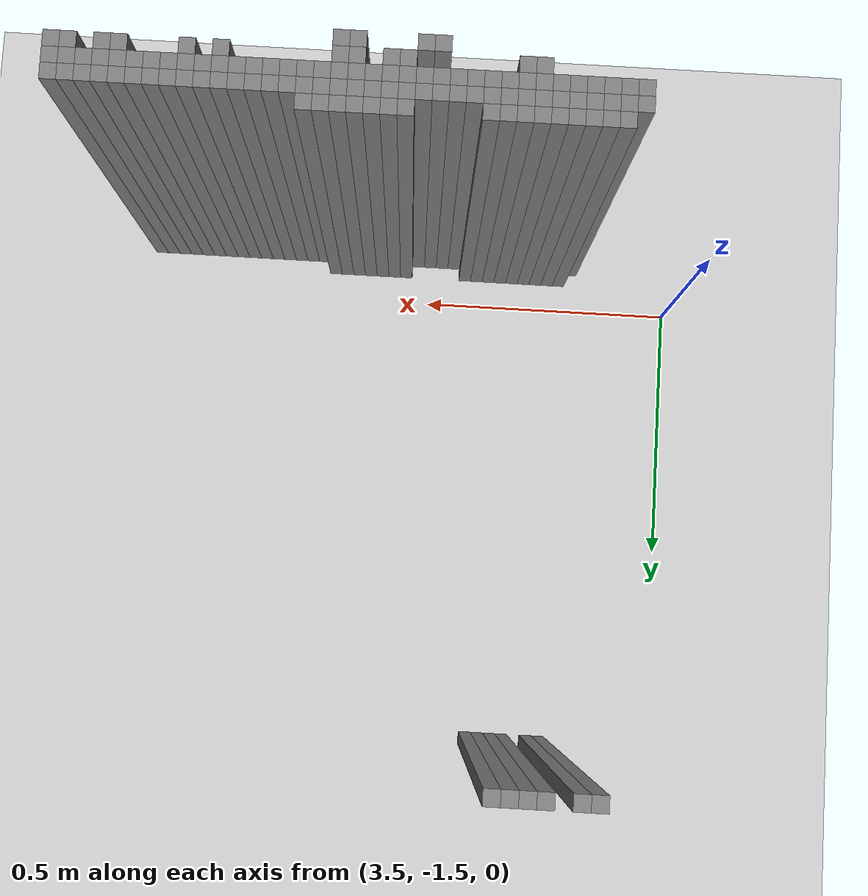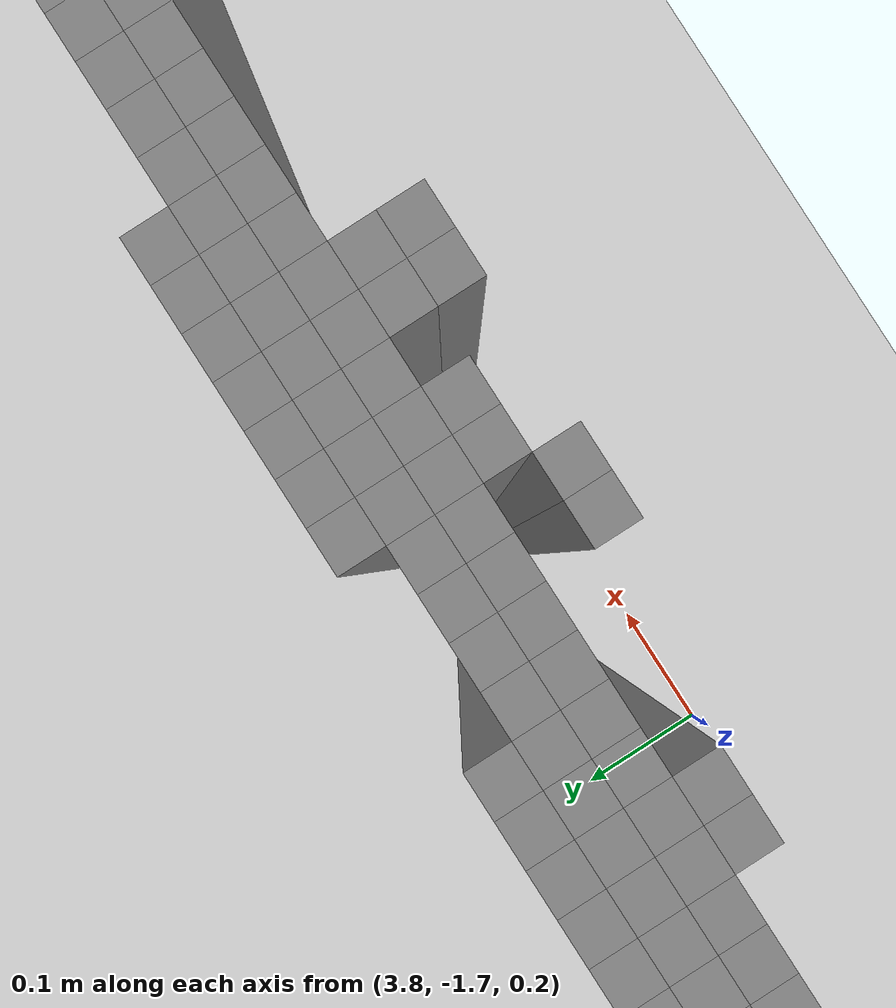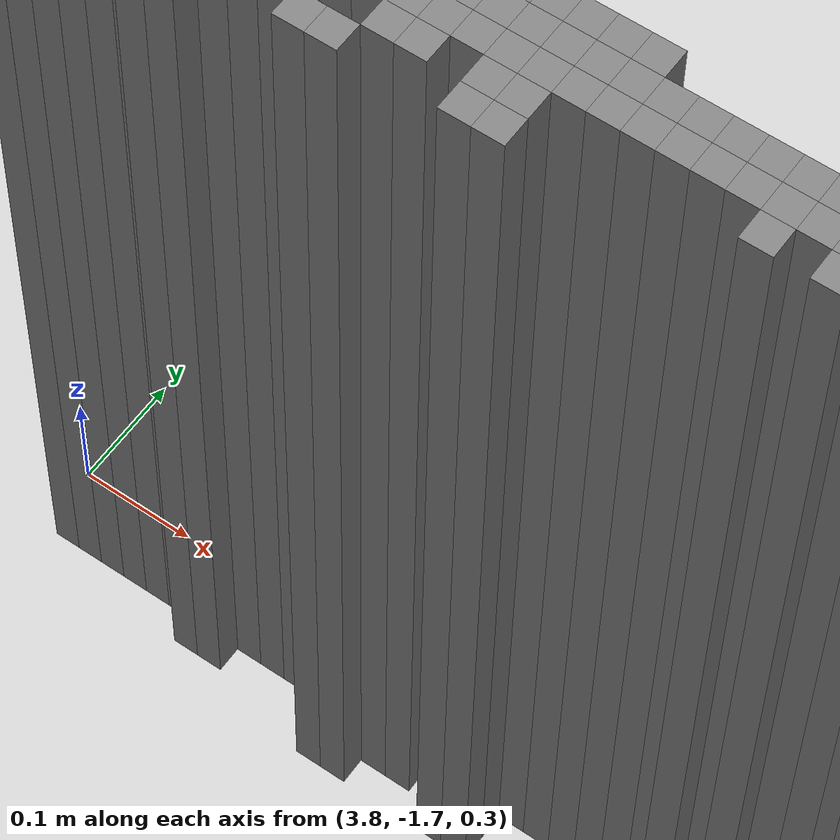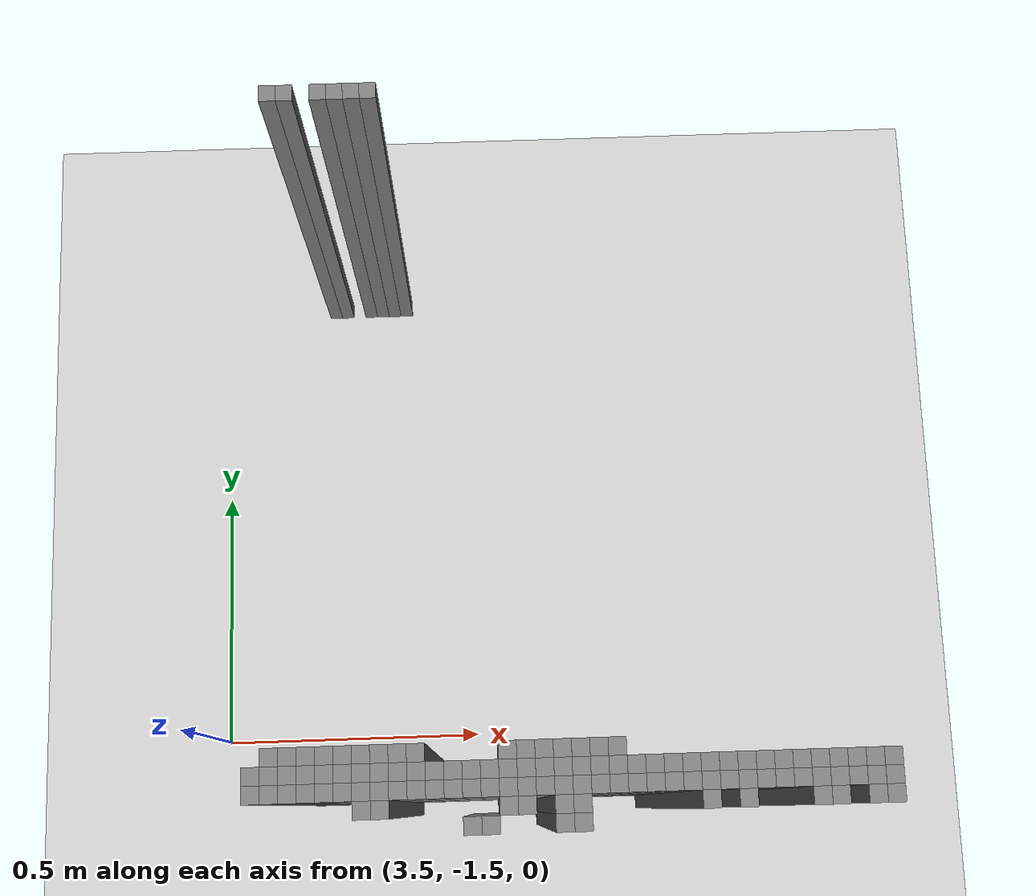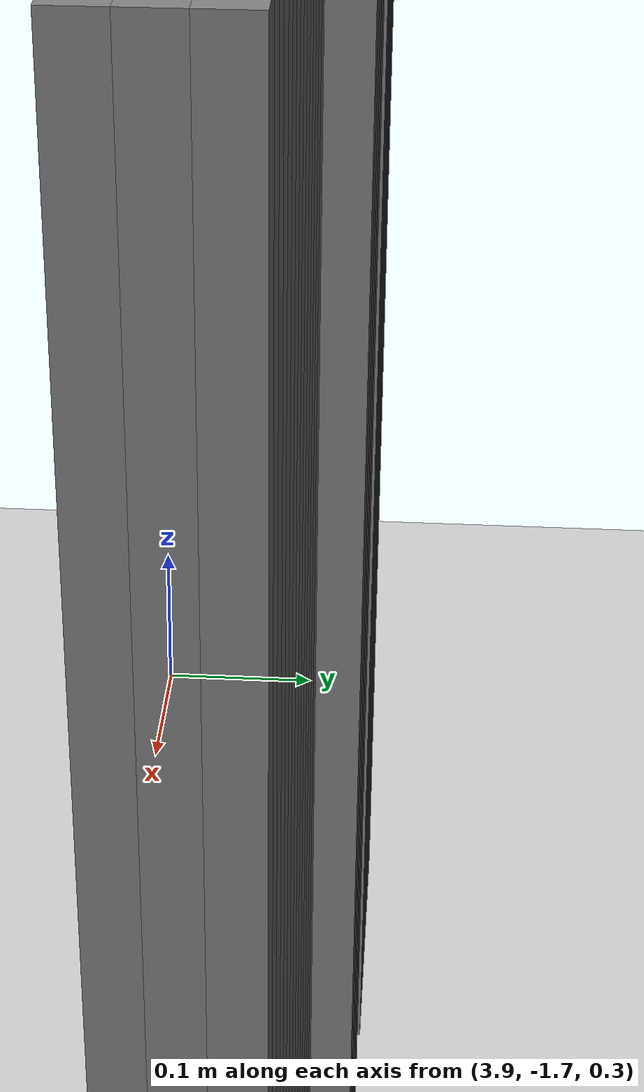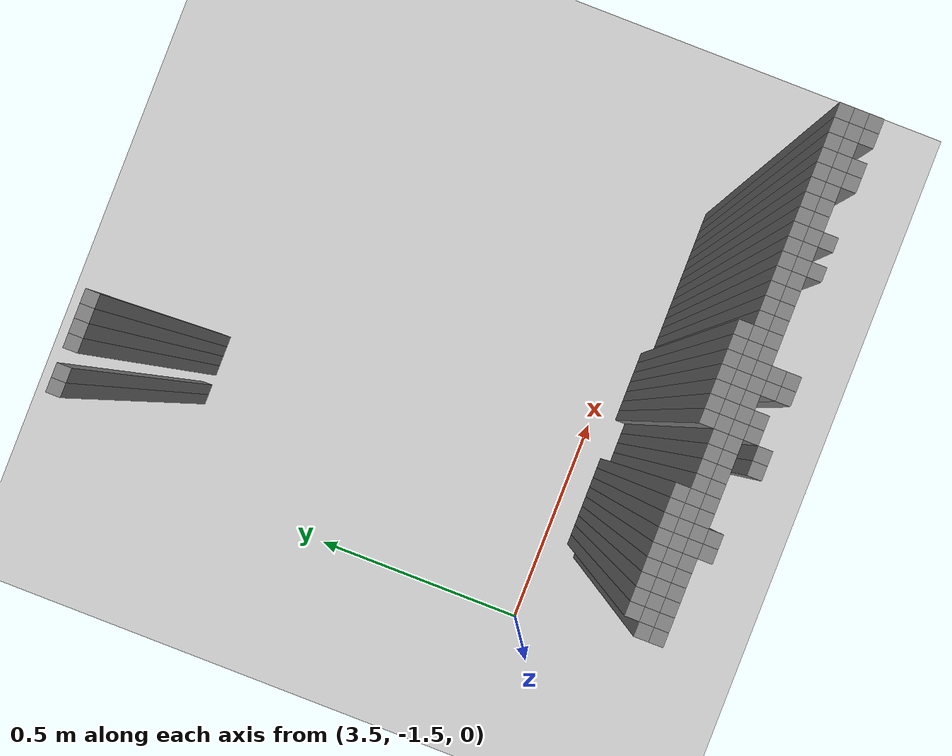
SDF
<sdf version="1.6">
 <world name="map_world">
  <include><uri>model://ground_plane</uri></include>
  <include><uri>model://sun</uri></include>
  <model name="obs_242_73">
   <static>true</static>
   <link name="link">
    <collision name="collision"><geometry><box><size>0.025 0.025 1.0</size></box></geometry></collision>
    <visual name="visual">
     <geometry><box><size>0.025 0.025 1.0</size></box></geometry>
     <material><ambient>0.5 0.5 0.5 1</ambient></material>
    </visual>
   </link>
   <pose>3.7237650000000007 -0.5940709999999998 0.5 0 0 0</pose>
  </model>
  <model name="obs_243_73">
   <static>true</static>
   <link name="link">
    <collision name="collision"><geometry><box><size>0.025 0.025 1.0</size></box></geometry></collision>
    <visual name="visual">
     <geometry><box><size>0.025 0.025 1.0</size></box></geometry>
     <material><ambient>0.5 0.5 0.5 1</ambient></material>
    </visual>
   </link>
   <pose>3.748765 -0.5940709999999998 0.5 0 0 0</pose>
  </model>
  <model name="obs_245_73">
   <static>true</static>
   <link name="link">
    <collision name="collision"><geometry><box><size>0.025 0.025 1.0</size></box></geometry></collision>
    <visual name="visual">
     <geometry><box><size>0.025 0.025 1.0</size></box></geometry>
     <material><ambient>0.5 0.5 0.5 1</ambient></material>
    </visual>
   </link>
   <pose>3.798765 -0.5940709999999998 0.5 0 0 0</pose>
  </model>
  <model name="obs_246_73">
   <static>true</static>
   <link name="link">
    <collision name="collision"><geometry><box><size>0.025 0.025 1.0</size></box></geometry></collision>
    <visual name="visual">
     <geometry><box><size>0.025 0.025 1.0</size></box></geometry>
     <material><ambient>0.5 0.5 0.5 1</ambient></material>
    </visual>
   </link>
   <pose>3.8237650000000003 -0.5940709999999998 0.5 0 0 0</pose>
  </model>
  <model name="obs_247_73">
   <static>true</static>
   <link name="link">
    <collision name="collision"><geometry><box><size>0.025 0.025 1.0</size></box></geometry></collision>
    <visual name="visual">
     <geometry><box><size>0.025 0.025 1.0</size></box></geometry>
     <material><ambient>0.5 0.5 0.5 1</ambient></material>
    </visual>
   </link>
   <pose>3.8487650000000007 -0.5940709999999998 0.5 0 0 0</pose>
  </model>
  <model name="obs_248_73">
   <static>true</static>
   <link name="link">
    <collision name="collision"><geometry><box><size>0.025 0.025 1.0</size></box></geometry></collision>
    <visual name="visual">
     <geometry><box><size>0.025 0.025 1.0</size></box></geometry>
     <material><ambient>0.5 0.5 0.5 1</ambient></material>
    </visual>
   </link>
   <pose>3.873765 -0.5940709999999998 0.5 0 0 0</pose>
  </model>
  <model name="obs_242_112">
   <static>true</static>
   <link name="link">
    <collision name="collision"><geometry><box><size>0.025 0.025 1.0</size></box></geometry></collision>
    <visual name="visual">
     <geometry><box><size>0.025 0.025 1.0</size></box></geometry>
     <material><ambient>0.5 0.5 0.5 1</ambient></material>
    </visual>
   </link>
   <pose>3.7237650000000007 -1.5690709999999999 0.5 0 0 0</pose>
  </model>
  <model name="obs_243_112">
   <static>true</static>
   <link name="link">
    <collision name="collision"><geometry><box><size>0.025 0.025 1.0</size></box></geometry></collision>
    <visual name="visual">
     <geometry><box><size>0.025 0.025 1.0</size></box></geometry>
     <material><ambient>0.5 0.5 0.5 1</ambient></material>
    </visual>
   </link>
   <pose>3.748765 -1.5690709999999999 0.5 0 0 0</pose>
  </model>
  <model name="obs_244_112">
   <static>true</static>
   <link name="link">
    <collision name="collision"><geometry><box><size>0.025 0.025 1.0</size></box></geometry></collision>
    <visual name="visual">
     <geometry><box><size>0.025 0.025 1.0</size></box></geometry>
     <material><ambient>0.5 0.5 0.5 1</ambient></material>
    </visual>
   </link>
   <pose>3.7737650000000005 -1.5690709999999999 0.5 0 0 0</pose>
  </model>
  <model name="obs_245_112">
   <static>true</static>
   <link name="link">
    <collision name="collision"><geometry><box><size>0.025 0.025 1.0</size></box></geometry></collision>
    <visual name="visual">
     <geometry><box><size>0.025 0.025 1.0</size></box></geometry>
     <material><ambient>0.5 0.5 0.5 1</ambient></material>
    </visual>
   </link>
   <pose>3.798765 -1.5690709999999999 0.5 0 0 0</pose>
  </model>
  <model name="obs_246_112">
   <static>true</static>
   <link name="link">
    <collision name="collision"><geometry><box><size>0.025 0.025 1.0</size></box></geometry></collision>
    <visual name="visual">
     <geometry><box><size>0.025 0.025 1.0</size></box></geometry>
     <material><ambient>0.5 0.5 0.5 1</ambient></material>
    </visual>
   </link>
   <pose>3.8237650000000003 -1.5690709999999999 0.5 0 0 0</pose>
  </model>
  <model name="obs_247_112">
   <static>true</static>
   <link name="link">
    <collision name="collision"><geometry><box><size>0.025 0.025 1.0</size></box></geometry></collision>
    <visual name="visual">
     <geometry><box><size>0.025 0.025 1.0</size></box></geometry>
     <material><ambient>0.5 0.5 0.5 1</ambient></material>
    </visual>
   </link>
   <pose>3.8487650000000007 -1.5690709999999999 0.5 0 0 0</pose>
  </model>
  <model name="obs_248_112">
   <static>true</static>
   <link name="link">
    <collision name="collision"><geometry><box><size>0.025 0.025 1.0</size></box></geometry></collision>
    <visual name="visual">
     <geometry><box><size>0.025 0.025 1.0</size></box></geometry>
     <material><ambient>0.5 0.5 0.5 1</ambient></material>
    </visual>
   </link>
   <pose>3.873765 -1.5690709999999999 0.5 0 0 0</pose>
  </model>
  <model name="obs_249_112">
   <static>true</static>
   <link name="link">
    <collision name="collision"><geometry><box><size>0.025 0.025 1.0</size></box></geometry></collision>
    <visual name="visual">
     <geometry><box><size>0.025 0.025 1.0</size></box></geometry>
     <material><ambient>0.5 0.5 0.5 1</ambient></material>
    </visual>
   </link>
   <pose>3.8987650000000005 -1.5690709999999999 0.5 0 0 0</pose>
  </model>
  <model name="obs_250_112">
   <static>true</static>
   <link name="link">
    <collision name="collision"><geometry><box><size>0.025 0.025 1.0</size></box></geometry></collision>
    <visual name="visual">
     <geometry><box><size>0.025 0.025 1.0</size></box></geometry>
     <material><ambient>0.5 0.5 0.5 1</ambient></material>
    </visual>
   </link>
   <pose>3.923765 -1.5690709999999999 0.5 0 0 0</pose>
  </model>
  <model name="obs_255_112">
   <static>true</static>
   <link name="link">
    <collision name="collision"><geometry><box><size>0.025 0.025 1.0</size></box></geometry></collision>
    <visual name="visual">
     <geometry><box><size>0.025 0.025 1.0</size></box></geometry>
     <material><ambient>0.5 0.5 0.5 1</ambient></material>
    </visual>
   </link>
   <pose>4.0487649999999995 -1.5690709999999999 0.5 0 0 0</pose>
  </model>
  <model name="obs_256_112">
   <static>true</static>
   <link name="link">
    <collision name="collision"><geometry><box><size>0.025 0.025 1.0</size></box></geometry></collision>
    <visual name="visual">
     <geometry><box><size>0.025 0.025 1.0</size></box></geometry>
     <material><ambient>0.5 0.5 0.5 1</ambient></material>
    </visual>
   </link>
   <pose>4.073765 -1.5690709999999999 0.5 0 0 0</pose>
  </model>
  <model name="obs_257_112">
   <static>true</static>
   <link name="link">
    <collision name="collision"><geometry><box><size>0.025 0.025 1.0</size></box></geometry></collision>
    <visual name="visual">
     <geometry><box><size>0.025 0.025 1.0</size></box></geometry>
     <material><ambient>0.5 0.5 0.5 1</ambient></material>
    </visual>
   </link>
   <pose>4.098765 -1.5690709999999999 0.5 0 0 0</pose>
  </model>
  <model name="obs_258_112">
   <static>true</static>
   <link name="link">
    <collision name="collision"><geometry><box><size>0.025 0.025 1.0</size></box></geometry></collision>
    <visual name="visual">
     <geometry><box><size>0.025 0.025 1.0</size></box></geometry>
     <material><ambient>0.5 0.5 0.5 1</ambient></material>
    </visual>
   </link>
   <pose>4.123765000000001 -1.5690709999999999 0.5 0 0 0</pose>
  </model>
  <model name="obs_259_112">
   <static>true</static>
   <link name="link">
    <collision name="collision"><geometry><box><size>0.025 0.025 1.0</size></box></geometry></collision>
    <visual name="visual">
     <geometry><box><size>0.025 0.025 1.0</size></box></geometry>
     <material><ambient>0.5 0.5 0.5 1</ambient></material>
    </visual>
   </link>
   <pose>4.148765000000001 -1.5690709999999999 0.5 0 0 0</pose>
  </model>
  <model name="obs_260_112">
   <static>true</static>
   <link name="link">
    <collision name="collision"><geometry><box><size>0.025 0.025 1.0</size></box></geometry></collision>
    <visual name="visual">
     <geometry><box><size>0.025 0.025 1.0</size></box></geometry>
     <material><ambient>0.5 0.5 0.5 1</ambient></material>
    </visual>
   </link>
   <pose>4.1737649999999995 -1.5690709999999999 0.5 0 0 0</pose>
  </model>
  <model name="obs_261_112">
   <static>true</static>
   <link name="link">
    <collision name="collision"><geometry><box><size>0.025 0.025 1.0</size></box></geometry></collision>
    <visual name="visual">
     <geometry><box><size>0.025 0.025 1.0</size></box></geometry>
     <material><ambient>0.5 0.5 0.5 1</ambient></material>
    </visual>
   </link>
   <pose>4.198765 -1.5690709999999999 0.5 0 0 0</pose>
  </model>
  <model name="obs_241_113">
   <static>true</static>
   <link name="link">
    <collision name="collision"><geometry><box><size>0.025 0.025 1.0</size></box></geometry></collision>
    <visual name="visual">
     <geometry><box><size>0.025 0.025 1.0</size></box></geometry>
     <material><ambient>0.5 0.5 0.5 1</ambient></material>
    </visual>
   </link>
   <pose>3.6987650000000003 -1.594071 0.5 0 0 0</pose>
  </model>
  <model name="obs_242_113">
   <static>true</static>
   <link name="link">
    <collision name="collision"><geometry><box><size>0.025 0.025 1.0</size></box></geometry></collision>
    <visual name="visual">
     <geometry><box><size>0.025 0.025 1.0</size></box></geometry>
     <material><ambient>0.5 0.5 0.5 1</ambient></material>
    </visual>
   </link>
   <pose>3.7237650000000007 -1.594071 0.5 0 0 0</pose>
  </model>
  <model name="obs_243_113">
   <static>true</static>
   <link name="link">
    <collision name="collision"><geometry><box><size>0.025 0.025 1.0</size></box></geometry></collision>
    <visual name="visual">
     <geometry><box><size>0.025 0.025 1.0</size></box></geometry>
     <material><ambient>0.5 0.5 0.5 1</ambient></material>
    </visual>
   </link>
   <pose>3.748765 -1.594071 0.5 0 0 0</pose>
  </model>
  <model name="obs_244_113">
   <static>true</static>
   <link name="link">
    <collision name="collision"><geometry><box><size>0.025 0.025 1.0</size></box></geometry></collision>
    <visual name="visual">
     <geometry><box><size>0.025 0.025 1.0</size></box></geometry>
     <material><ambient>0.5 0.5 0.5 1</ambient></material>
    </visual>
   </link>
   <pose>3.7737650000000005 -1.594071 0.5 0 0 0</pose>
  </model>
  <model name="obs_245_113">
   <static>true</static>
   <link name="link">
    <collision name="collision"><geometry><box><size>0.025 0.025 1.0</size></box></geometry></collision>
    <visual name="visual">
     <geometry><box><size>0.025 0.025 1.0</size></box></geometry>
     <material><ambient>0.5 0.5 0.5 1</ambient></material>
    </visual>
   </link>
   <pose>3.798765 -1.594071 0.5 0 0 0</pose>
  </model>
  <model name="obs_246_113">
   <static>true</static>
   <link name="link">
    <collision name="collision"><geometry><box><size>0.025 0.025 1.0</size></box></geometry></collision>
    <visual name="visual">
     <geometry><box><size>0.025 0.025 1.0</size></box></geometry>
     <material><ambient>0.5 0.5 0.5 1</ambient></material>
    </visual>
   </link>
   <pose>3.8237650000000003 -1.594071 0.5 0 0 0</pose>
  </model>
  <model name="obs_247_113">
   <static>true</static>
   <link name="link">
    <collision name="collision"><geometry><box><size>0.025 0.025 1.0</size></box></geometry></collision>
    <visual name="visual">
     <geometry><box><size>0.025 0.025 1.0</size></box></geometry>
     <material><ambient>0.5 0.5 0.5 1</ambient></material>
    </visual>
   </link>
   <pose>3.8487650000000007 -1.594071 0.5 0 0 0</pose>
  </model>
  <model name="obs_248_113">
   <static>true</static>
   <link name="link">
    <collision name="collision"><geometry><box><size>0.025 0.025 1.0</size></box></geometry></collision>
    <visual name="visual">
     <geometry><box><size>0.025 0.025 1.0</size></box></geometry>
     <material><ambient>0.5 0.5 0.5 1</ambient></material>
    </visual>
   </link>
   <pose>3.873765 -1.594071 0.5 0 0 0</pose>
  </model>
  <model name="obs_249_113">
   <static>true</static>
   <link name="link">
    <collision name="collision"><geometry><box><size>0.025 0.025 1.0</size></box></geometry></collision>
    <visual name="visual">
     <geometry><box><size>0.025 0.025 1.0</size></box></geometry>
     <material><ambient>0.5 0.5 0.5 1</ambient></material>
    </visual>
   </link>
   <pose>3.8987650000000005 -1.594071 0.5 0 0 0</pose>
  </model>
  <model name="obs_250_113">
   <static>true</static>
   <link name="link">
    <collision name="collision"><geometry><box><size>0.025 0.025 1.0</size></box></geometry></collision>
    <visual name="visual">
     <geometry><box><size>0.025 0.025 1.0</size></box></geometry>
     <material><ambient>0.5 0.5 0.5 1</ambient></material>
    </visual>
   </link>
   <pose>3.923765 -1.594071 0.5 0 0 0</pose>
  </model>
  <model name="obs_251_113">
   <static>true</static>
   <link name="link">
    <collision name="collision"><geometry><box><size>0.025 0.025 1.0</size></box></geometry></collision>
    <visual name="visual">
     <geometry><box><size>0.025 0.025 1.0</size></box></geometry>
     <material><ambient>0.5 0.5 0.5 1</ambient></material>
    </visual>
   </link>
   <pose>3.9487650000000003 -1.594071 0.5 0 0 0</pose>
  </model>
  <model name="obs_252_113">
   <static>true</static>
   <link name="link">
    <collision name="collision"><geometry><box><size>0.025 0.025 1.0</size></box></geometry></collision>
    <visual name="visual">
     <geometry><box><size>0.025 0.025 1.0</size></box></geometry>
     <material><ambient>0.5 0.5 0.5 1</ambient></material>
    </visual>
   </link>
   <pose>3.9737650000000007 -1.594071 0.5 0 0 0</pose>
  </model>
  <model name="obs_253_113">
   <static>true</static>
   <link name="link">
    <collision name="collision"><geometry><box><size>0.025 0.025 1.0</size></box></geometry></collision>
    <visual name="visual">
     <geometry><box><size>0.025 0.025 1.0</size></box></geometry>
     <material><ambient>0.5 0.5 0.5 1</ambient></material>
    </visual>
   </link>
   <pose>3.998765 -1.594071 0.5 0 0 0</pose>
  </model>
  <model name="obs_254_113">
   <static>true</static>
   <link name="link">
    <collision name="collision"><geometry><box><size>0.025 0.025 1.0</size></box></geometry></collision>
    <visual name="visual">
     <geometry><box><size>0.025 0.025 1.0</size></box></geometry>
     <material><ambient>0.5 0.5 0.5 1</ambient></material>
    </visual>
   </link>
   <pose>4.023765000000001 -1.594071 0.5 0 0 0</pose>
  </model>
  <model name="obs_255_113">
   <static>true</static>
   <link name="link">
    <collision name="collision"><geometry><box><size>0.025 0.025 1.0</size></box></geometry></collision>
    <visual name="visual">
     <geometry><box><size>0.025 0.025 1.0</size></box></geometry>
     <material><ambient>0.5 0.5 0.5 1</ambient></material>
    </visual>
   </link>
   <pose>4.0487649999999995 -1.594071 0.5 0 0 0</pose>
  </model>
  <model name="obs_256_113">
   <static>true</static>
   <link name="link">
    <collision name="collision"><geometry><box><size>0.025 0.025 1.0</size></box></geometry></collision>
    <visual name="visual">
     <geometry><box><size>0.025 0.025 1.0</size></box></geometry>
     <material><ambient>0.5 0.5 0.5 1</ambient></material>
    </visual>
   </link>
   <pose>4.073765 -1.594071 0.5 0 0 0</pose>
  </model>
  <model name="obs_257_113">
   <static>true</static>
   <link name="link">
    <collision name="collision"><geometry><box><size>0.025 0.025 1.0</size></box></geometry></collision>
    <visual name="visual">
     <geometry><box><size>0.025 0.025 1.0</size></box></geometry>
     <material><ambient>0.5 0.5 0.5 1</ambient></material>
    </visual>
   </link>
   <pose>4.098765 -1.594071 0.5 0 0 0</pose>
  </model>
  <model name="obs_258_113">
   <static>true</static>
   <link name="link">
    <collision name="collision"><geometry><box><size>0.025 0.025 1.0</size></box></geometry></collision>
    <visual name="visual">
     <geometry><box><size>0.025 0.025 1.0</size></box></geometry>
     <material><ambient>0.5 0.5 0.5 1</ambient></material>
    </visual>
   </link>
   <pose>4.123765000000001 -1.594071 0.5 0 0 0</pose>
  </model>
  <model name="obs_259_113">
   <static>true</static>
   <link name="link">
    <collision name="collision"><geometry><box><size>0.025 0.025 1.0</size></box></geometry></collision>
    <visual name="visual">
     <geometry><box><size>0.025 0.025 1.0</size></box></geometry>
     <material><ambient>0.5 0.5 0.5 1</ambient></material>
    </visual>
   </link>
   <pose>4.148765000000001 -1.594071 0.5 0 0 0</pose>
  </model>
  <model name="obs_260_113">
   <static>true</static>
   <link name="link">
    <collision name="collision"><geometry><box><size>0.025 0.025 1.0</size></box></geometry></collision>
    <visual name="visual">
     <geometry><box><size>0.025 0.025 1.0</size></box></geometry>
     <material><ambient>0.5 0.5 0.5 1</ambient></material>
    </visual>
   </link>
   <pose>4.1737649999999995 -1.594071 0.5 0 0 0</pose>
  </model>
  <model name="obs_261_113">
   <static>true</static>
   <link name="link">
    <collision name="collision"><geometry><box><size>0.025 0.025 1.0</size></box></geometry></collision>
    <visual name="visual">
     <geometry><box><size>0.025 0.025 1.0</size></box></geometry>
     <material><ambient>0.5 0.5 0.5 1</ambient></material>
    </visual>
   </link>
   <pose>4.198765 -1.594071 0.5 0 0 0</pose>
  </model>
  <model name="obs_262_113">
   <static>true</static>
   <link name="link">
    <collision name="collision"><geometry><box><size>0.025 0.025 1.0</size></box></geometry></collision>
    <visual name="visual">
     <geometry><box><size>0.025 0.025 1.0</size></box></geometry>
     <material><ambient>0.5 0.5 0.5 1</ambient></material>
    </visual>
   </link>
   <pose>4.223765 -1.594071 0.5 0 0 0</pose>
  </model>
  <model name="obs_263_113">
   <static>true</static>
   <link name="link">
    <collision name="collision"><geometry><box><size>0.025 0.025 1.0</size></box></geometry></collision>
    <visual name="visual">
     <geometry><box><size>0.025 0.025 1.0</size></box></geometry>
     <material><ambient>0.5 0.5 0.5 1</ambient></material>
    </visual>
   </link>
   <pose>4.248765000000001 -1.594071 0.5 0 0 0</pose>
  </model>
  <model name="obs_264_113">
   <static>true</static>
   <link name="link">
    <collision name="collision"><geometry><box><size>0.025 0.025 1.0</size></box></geometry></collision>
    <visual name="visual">
     <geometry><box><size>0.025 0.025 1.0</size></box></geometry>
     <material><ambient>0.5 0.5 0.5 1</ambient></material>
    </visual>
   </link>
   <pose>4.273765000000001 -1.594071 0.5 0 0 0</pose>
  </model>
  <model name="obs_265_113">
   <static>true</static>
   <link name="link">
    <collision name="collision"><geometry><box><size>0.025 0.025 1.0</size></box></geometry></collision>
    <visual name="visual">
     <geometry><box><size>0.025 0.025 1.0</size></box></geometry>
     <material><ambient>0.5 0.5 0.5 1</ambient></material>
    </visual>
   </link>
   <pose>4.2987649999999995 -1.594071 0.5 0 0 0</pose>
  </model>
  <model name="obs_266_113">
   <static>true</static>
   <link name="link">
    <collision name="collision"><geometry><box><size>0.025 0.025 1.0</size></box></geometry></collision>
    <visual name="visual">
     <geometry><box><size>0.025 0.025 1.0</size></box></geometry>
     <material><ambient>0.5 0.5 0.5 1</ambient></material>
    </visual>
   </link>
   <pose>4.323765 -1.594071 0.5 0 0 0</pose>
  </model>
  <model name="obs_267_113">
   <static>true</static>
   <link name="link">
    <collision name="collision"><geometry><box><size>0.025 0.025 1.0</size></box></geometry></collision>
    <visual name="visual">
     <geometry><box><size>0.025 0.025 1.0</size></box></geometry>
     <material><ambient>0.5 0.5 0.5 1</ambient></material>
    </visual>
   </link>
   <pose>4.348765 -1.594071 0.5 0 0 0</pose>
  </model>
  <model name="obs_268_113">
   <static>true</static>
   <link name="link">
    <collision name="collision"><geometry><box><size>0.025 0.025 1.0</size></box></geometry></collision>
    <visual name="visual">
     <geometry><box><size>0.025 0.025 1.0</size></box></geometry>
     <material><ambient>0.5 0.5 0.5 1</ambient></material>
    </visual>
   </link>
   <pose>4.373765000000001 -1.594071 0.5 0 0 0</pose>
  </model>
  <model name="obs_269_113">
   <static>true</static>
   <link name="link">
    <collision name="collision"><geometry><box><size>0.025 0.025 1.0</size></box></geometry></collision>
    <visual name="visual">
     <geometry><box><size>0.025 0.025 1.0</size></box></geometry>
     <material><ambient>0.5 0.5 0.5 1</ambient></material>
    </visual>
   </link>
   <pose>4.398765000000001 -1.594071 0.5 0 0 0</pose>
  </model>
  <model name="obs_270_113">
   <static>true</static>
   <link name="link">
    <collision name="collision"><geometry><box><size>0.025 0.025 1.0</size></box></geometry></collision>
    <visual name="visual">
     <geometry><box><size>0.025 0.025 1.0</size></box></geometry>
     <material><ambient>0.5 0.5 0.5 1</ambient></material>
    </visual>
   </link>
   <pose>4.4237649999999995 -1.594071 0.5 0 0 0</pose>
  </model>
  <model name="obs_271_113">
   <static>true</static>
   <link name="link">
    <collision name="collision"><geometry><box><size>0.025 0.025 1.0</size></box></geometry></collision>
    <visual name="visual">
     <geometry><box><size>0.025 0.025 1.0</size></box></geometry>
     <material><ambient>0.5 0.5 0.5 1</ambient></material>
    </visual>
   </link>
   <pose>4.448765 -1.594071 0.5 0 0 0</pose>
  </model>
  <model name="obs_272_113">
   <static>true</static>
   <link name="link">
    <collision name="collision"><geometry><box><size>0.025 0.025 1.0</size></box></geometry></collision>
    <visual name="visual">
     <geometry><box><size>0.025 0.025 1.0</size></box></geometry>
     <material><ambient>0.5 0.5 0.5 1</ambient></material>
    </visual>
   </link>
   <pose>4.473765 -1.594071 0.5 0 0 0</pose>
  </model>
  <model name="obs_273_113">
   <static>true</static>
   <link name="link">
    <collision name="collision"><geometry><box><size>0.025 0.025 1.0</size></box></geometry></collision>
    <visual name="visual">
     <geometry><box><size>0.025 0.025 1.0</size></box></geometry>
     <material><ambient>0.5 0.5 0.5 1</ambient></material>
    </visual>
   </link>
   <pose>4.498765000000001 -1.594071 0.5 0 0 0</pose>
  </model>
  <model name="obs_274_113">
   <static>true</static>
   <link name="link">
    <collision name="collision"><geometry><box><size>0.025 0.025 1.0</size></box></geometry></collision>
    <visual name="visual">
     <geometry><box><size>0.025 0.025 1.0</size></box></geometry>
     <material><ambient>0.5 0.5 0.5 1</ambient></material>
    </visual>
   </link>
   <pose>4.523765000000001 -1.594071 0.5 0 0 0</pose>
  </model>
  <model name="obs_275_113">
   <static>true</static>
   <link name="link">
    <collision name="collision"><geometry><box><size>0.025 0.025 1.0</size></box></geometry></collision>
    <visual name="visual">
     <geometry><box><size>0.025 0.025 1.0</size></box></geometry>
     <material><ambient>0.5 0.5 0.5 1</ambient></material>
    </visual>
   </link>
   <pose>4.5487649999999995 -1.594071 0.5 0 0 0</pose>
  </model>
  <model name="obs_276_113">
   <static>true</static>
   <link name="link">
    <collision name="collision"><geometry><box><size>0.025 0.025 1.0</size></box></geometry></collision>
    <visual name="visual">
     <geometry><box><size>0.025 0.025 1.0</size></box></geometry>
     <material><ambient>0.5 0.5 0.5 1</ambient></material>
    </visual>
   </link>
   <pose>4.573765 -1.594071 0.5 0 0 0</pose>
  </model>
  <model name="obs_241_114">
   <static>true</static>
   <link name="link">
    <collision name="collision"><geometry><box><size>0.025 0.025 1.0</size></box></geometry></collision>
    <visual name="visual">
     <geometry><box><size>0.025 0.025 1.0</size></box></geometry>
     <material><ambient>0.5 0.5 0.5 1</ambient></material>
    </visual>
   </link>
   <pose>3.6987650000000003 -1.619071 0.5 0 0 0</pose>
  </model>
  <model name="obs_242_114">
   <static>true</static>
   <link name="link">
    <collision name="collision"><geometry><box><size>0.025 0.025 1.0</size></box></geometry></collision>
    <visual name="visual">
     <geometry><box><size>0.025 0.025 1.0</size></box></geometry>
     <material><ambient>0.5 0.5 0.5 1</ambient></material>
    </visual>
   </link>
   <pose>3.7237650000000007 -1.619071 0.5 0 0 0</pose>
  </model>
  <model name="obs_243_114">
   <static>true</static>
   <link name="link">
    <collision name="collision"><geometry><box><size>0.025 0.025 1.0</size></box></geometry></collision>
    <visual name="visual">
     <geometry><box><size>0.025 0.025 1.0</size></box></geometry>
     <material><ambient>0.5 0.5 0.5 1</ambient></material>
    </visual>
   </link>
   <pose>3.748765 -1.619071 0.5 0 0 0</pose>
  </model>
  <model name="obs_244_114">
   <static>true</static>
   <link name="link">
    <collision name="collision"><geometry><box><size>0.025 0.025 1.0</size></box></geometry></collision>
    <visual name="visual">
     <geometry><box><size>0.025 0.025 1.0</size></box></geometry>
     <material><ambient>0.5 0.5 0.5 1</ambient></material>
    </visual>
   </link>
   <pose>3.7737650000000005 -1.619071 0.5 0 0 0</pose>
  </model>
  <model name="obs_245_114">
   <static>true</static>
   <link name="link">
    <collision name="collision"><geometry><box><size>0.025 0.025 1.0</size></box></geometry></collision>
    <visual name="visual">
     <geometry><box><size>0.025 0.025 1.0</size></box></geometry>
     <material><ambient>0.5 0.5 0.5 1</ambient></material>
    </visual>
   </link>
   <pose>3.798765 -1.619071 0.5 0 0 0</pose>
  </model>
  <model name="obs_246_114">
   <static>true</static>
   <link name="link">
    <collision name="collision"><geometry><box><size>0.025 0.025 1.0</size></box></geometry></collision>
    <visual name="visual">
     <geometry><box><size>0.025 0.025 1.0</size></box></geometry>
     <material><ambient>0.5 0.5 0.5 1</ambient></material>
    </visual>
   </link>
   <pose>3.8237650000000003 -1.619071 0.5 0 0 0</pose>
  </model>
  <model name="obs_247_114">
   <static>true</static>
   <link name="link">
    <collision name="collision"><geometry><box><size>0.025 0.025 1.0</size></box></geometry></collision>
    <visual name="visual">
     <geometry><box><size>0.025 0.025 1.0</size></box></geometry>
     <material><ambient>0.5 0.5 0.5 1</ambient></material>
    </visual>
   </link>
   <pose>3.8487650000000007 -1.619071 0.5 0 0 0</pose>
  </model>
  <model name="obs_248_114">
   <static>true</static>
   <link name="link">
    <collision name="collision"><geometry><box><size>0.025 0.025 1.0</size></box></geometry></collision>
    <visual name="visual">
     <geometry><box><size>0.025 0.025 1.0</size></box></geometry>
     <material><ambient>0.5 0.5 0.5 1</ambient></material>
    </visual>
   </link>
   <pose>3.873765 -1.619071 0.5 0 0 0</pose>
  </model>
  <model name="obs_249_114">
   <static>true</static>
   <link name="link">
    <collision name="collision"><geometry><box><size>0.025 0.025 1.0</size></box></geometry></collision>
    <visual name="visual">
     <geometry><box><size>0.025 0.025 1.0</size></box></geometry>
     <material><ambient>0.5 0.5 0.5 1</ambient></material>
    </visual>
   </link>
   <pose>3.8987650000000005 -1.619071 0.5 0 0 0</pose>
  </model>
  <model name="obs_250_114">
   <static>true</static>
   <link name="link">
    <collision name="collision"><geometry><box><size>0.025 0.025 1.0</size></box></geometry></collision>
    <visual name="visual">
     <geometry><box><size>0.025 0.025 1.0</size></box></geometry>
     <material><ambient>0.5 0.5 0.5 1</ambient></material>
    </visual>
   </link>
   <pose>3.923765 -1.619071 0.5 0 0 0</pose>
  </model>
  <model name="obs_251_114">
   <static>true</static>
   <link name="link">
    <collision name="collision"><geometry><box><size>0.025 0.025 1.0</size></box></geometry></collision>
    <visual name="visual">
     <geometry><box><size>0.025 0.025 1.0</size></box></geometry>
     <material><ambient>0.5 0.5 0.5 1</ambient></material>
    </visual>
   </link>
   <pose>3.9487650000000003 -1.619071 0.5 0 0 0</pose>
  </model>
  <model name="obs_252_114">
   <static>true</static>
   <link name="link">
    <collision name="collision"><geometry><box><size>0.025 0.025 1.0</size></box></geometry></collision>
    <visual name="visual">
     <geometry><box><size>0.025 0.025 1.0</size></box></geometry>
     <material><ambient>0.5 0.5 0.5 1</ambient></material>
    </visual>
   </link>
   <pose>3.9737650000000007 -1.619071 0.5 0 0 0</pose>
  </model>
  <model name="obs_253_114">
   <static>true</static>
   <link name="link">
    <collision name="collision"><geometry><box><size>0.025 0.025 1.0</size></box></geometry></collision>
    <visual name="visual">
     <geometry><box><size>0.025 0.025 1.0</size></box></geometry>
     <material><ambient>0.5 0.5 0.5 1</ambient></material>
    </visual>
   </link>
   <pose>3.998765 -1.619071 0.5 0 0 0</pose>
  </model>
  <model name="obs_254_114">
   <static>true</static>
   <link name="link">
    <collision name="collision"><geometry><box><size>0.025 0.025 1.0</size></box></geometry></collision>
    <visual name="visual">
     <geometry><box><size>0.025 0.025 1.0</size></box></geometry>
     <material><ambient>0.5 0.5 0.5 1</ambient></material>
    </visual>
   </link>
   <pose>4.023765000000001 -1.619071 0.5 0 0 0</pose>
  </model>
  <model name="obs_255_114">
   <static>true</static>
   <link name="link">
    <collision name="collision"><geometry><box><size>0.025 0.025 1.0</size></box></geometry></collision>
    <visual name="visual">
     <geometry><box><size>0.025 0.025 1.0</size></box></geometry>
     <material><ambient>0.5 0.5 0.5 1</ambient></material>
    </visual>
   </link>
   <pose>4.0487649999999995 -1.619071 0.5 0 0 0</pose>
  </model>
  <model name="obs_256_114">
   <static>true</static>
   <link name="link">
    <collision name="collision"><geometry><box><size>0.025 0.025 1.0</size></box></geometry></collision>
    <visual name="visual">
     <geometry><box><size>0.025 0.025 1.0</size></box></geometry>
     <material><ambient>0.5 0.5 0.5 1</ambient></material>
    </visual>
   </link>
   <pose>4.073765 -1.619071 0.5 0 0 0</pose>
  </model>
  <model name="obs_257_114">
   <static>true</static>
   <link name="link">
    <collision name="collision"><geometry><box><size>0.025 0.025 1.0</size></box></geometry></collision>
    <visual name="visual">
     <geometry><box><size>0.025 0.025 1.0</size></box></geometry>
     <material><ambient>0.5 0.5 0.5 1</ambient></material>
    </visual>
   </link>
   <pose>4.098765 -1.619071 0.5 0 0 0</pose>
  </model>
  <model name="obs_258_114">
   <static>true</static>
   <link name="link">
    <collision name="collision"><geometry><box><size>0.025 0.025 1.0</size></box></geometry></collision>
    <visual name="visual">
     <geometry><box><size>0.025 0.025 1.0</size></box></geometry>
     <material><ambient>0.5 0.5 0.5 1</ambient></material>
    </visual>
   </link>
   <pose>4.123765000000001 -1.619071 0.5 0 0 0</pose>
  </model>
  <model name="obs_259_114">
   <static>true</static>
   <link name="link">
    <collision name="collision"><geometry><box><size>0.025 0.025 1.0</size></box></geometry></collision>
    <visual name="visual">
     <geometry><box><size>0.025 0.025 1.0</size></box></geometry>
     <material><ambient>0.5 0.5 0.5 1</ambient></material>
    </visual>
   </link>
   <pose>4.148765000000001 -1.619071 0.5 0 0 0</pose>
  </model>
  <model name="obs_260_114">
   <static>true</static>
   <link name="link">
    <collision name="collision"><geometry><box><size>0.025 0.025 1.0</size></box></geometry></collision>
    <visual name="visual">
     <geometry><box><size>0.025 0.025 1.0</size></box></geometry>
     <material><ambient>0.5 0.5 0.5 1</ambient></material>
    </visual>
   </link>
   <pose>4.1737649999999995 -1.619071 0.5 0 0 0</pose>
  </model>
  <model name="obs_261_114">
   <static>true</static>
   <link name="link">
    <collision name="collision"><geometry><box><size>0.025 0.025 1.0</size></box></geometry></collision>
    <visual name="visual">
     <geometry><box><size>0.025 0.025 1.0</size></box></geometry>
     <material><ambient>0.5 0.5 0.5 1</ambient></material>
    </visual>
   </link>
   <pose>4.198765 -1.619071 0.5 0 0 0</pose>
  </model>
  <model name="obs_262_114">
   <static>true</static>
   <link name="link">
    <collision name="collision"><geometry><box><size>0.025 0.025 1.0</size></box></geometry></collision>
    <visual name="visual">
     <geometry><box><size>0.025 0.025 1.0</size></box></geometry>
     <material><ambient>0.5 0.5 0.5 1</ambient></material>
    </visual>
   </link>
   <pose>4.223765 -1.619071 0.5 0 0 0</pose>
  </model>
  <model name="obs_263_114">
   <static>true</static>
   <link name="link">
    <collision name="collision"><geometry><box><size>0.025 0.025 1.0</size></box></geometry></collision>
    <visual name="visual">
     <geometry><box><size>0.025 0.025 1.0</size></box></geometry>
     <material><ambient>0.5 0.5 0.5 1</ambient></material>
    </visual>
   </link>
   <pose>4.248765000000001 -1.619071 0.5 0 0 0</pose>
  </model>
  <model name="obs_264_114">
   <static>true</static>
   <link name="link">
    <collision name="collision"><geometry><box><size>0.025 0.025 1.0</size></box></geometry></collision>
    <visual name="visual">
     <geometry><box><size>0.025 0.025 1.0</size></box></geometry>
     <material><ambient>0.5 0.5 0.5 1</ambient></material>
    </visual>
   </link>
   <pose>4.273765000000001 -1.619071 0.5 0 0 0</pose>
  </model>
  <model name="obs_265_114">
   <static>true</static>
   <link name="link">
    <collision name="collision"><geometry><box><size>0.025 0.025 1.0</size></box></geometry></collision>
    <visual name="visual">
     <geometry><box><size>0.025 0.025 1.0</size></box></geometry>
     <material><ambient>0.5 0.5 0.5 1</ambient></material>
    </visual>
   </link>
   <pose>4.2987649999999995 -1.619071 0.5 0 0 0</pose>
  </model>
  <model name="obs_266_114">
   <static>true</static>
   <link name="link">
    <collision name="collision"><geometry><box><size>0.025 0.025 1.0</size></box></geometry></collision>
    <visual name="visual">
     <geometry><box><size>0.025 0.025 1.0</size></box></geometry>
     <material><ambient>0.5 0.5 0.5 1</ambient></material>
    </visual>
   </link>
   <pose>4.323765 -1.619071 0.5 0 0 0</pose>
  </model>
  <model name="obs_267_114">
   <static>true</static>
   <link name="link">
    <collision name="collision"><geometry><box><size>0.025 0.025 1.0</size></box></geometry></collision>
    <visual name="visual">
     <geometry><box><size>0.025 0.025 1.0</size></box></geometry>
     <material><ambient>0.5 0.5 0.5 1</ambient></material>
    </visual>
   </link>
   <pose>4.348765 -1.619071 0.5 0 0 0</pose>
  </model>
  <model name="obs_268_114">
   <static>true</static>
   <link name="link">
    <collision name="collision"><geometry><box><size>0.025 0.025 1.0</size></box></geometry></collision>
    <visual name="visual">
     <geometry><box><size>0.025 0.025 1.0</size></box></geometry>
     <material><ambient>0.5 0.5 0.5 1</ambient></material>
    </visual>
   </link>
   <pose>4.373765000000001 -1.619071 0.5 0 0 0</pose>
  </model>
  <model name="obs_269_114">
   <static>true</static>
   <link name="link">
    <collision name="collision"><geometry><box><size>0.025 0.025 1.0</size></box></geometry></collision>
    <visual name="visual">
     <geometry><box><size>0.025 0.025 1.0</size></box></geometry>
     <material><ambient>0.5 0.5 0.5 1</ambient></material>
    </visual>
   </link>
   <pose>4.398765000000001 -1.619071 0.5 0 0 0</pose>
  </model>
  <model name="obs_270_114">
   <static>true</static>
   <link name="link">
    <collision name="collision"><geometry><box><size>0.025 0.025 1.0</size></box></geometry></collision>
    <visual name="visual">
     <geometry><box><size>0.025 0.025 1.0</size></box></geometry>
     <material><ambient>0.5 0.5 0.5 1</ambient></material>
    </visual>
   </link>
   <pose>4.4237649999999995 -1.619071 0.5 0 0 0</pose>
  </model>
  <model name="obs_271_114">
   <static>true</static>
   <link name="link">
    <collision name="collision"><geometry><box><size>0.025 0.025 1.0</size></box></geometry></collision>
    <visual name="visual">
     <geometry><box><size>0.025 0.025 1.0</size></box></geometry>
     <material><ambient>0.5 0.5 0.5 1</ambient></material>
    </visual>
   </link>
   <pose>4.448765 -1.619071 0.5 0 0 0</pose>
  </model>
  <model name="obs_272_114">
   <static>true</static>
   <link name="link">
    <collision name="collision"><geometry><box><size>0.025 0.025 1.0</size></box></geometry></collision>
    <visual name="visual">
     <geometry><box><size>0.025 0.025 1.0</size></box></geometry>
     <material><ambient>0.5 0.5 0.5 1</ambient></material>
    </visual>
   </link>
   <pose>4.473765 -1.619071 0.5 0 0 0</pose>
  </model>
  <model name="obs_273_114">
   <static>true</static>
   <link name="link">
    <collision name="collision"><geometry><box><size>0.025 0.025 1.0</size></box></geometry></collision>
    <visual name="visual">
     <geometry><box><size>0.025 0.025 1.0</size></box></geometry>
     <material><ambient>0.5 0.5 0.5 1</ambient></material>
    </visual>
   </link>
   <pose>4.498765000000001 -1.619071 0.5 0 0 0</pose>
  </model>
  <model name="obs_274_114">
   <static>true</static>
   <link name="link">
    <collision name="collision"><geometry><box><size>0.025 0.025 1.0</size></box></geometry></collision>
    <visual name="visual">
     <geometry><box><size>0.025 0.025 1.0</size></box></geometry>
     <material><ambient>0.5 0.5 0.5 1</ambient></material>
    </visual>
   </link>
   <pose>4.523765000000001 -1.619071 0.5 0 0 0</pose>
  </model>
  <model name="obs_275_114">
   <static>true</static>
   <link name="link">
    <collision name="collision"><geometry><box><size>0.025 0.025 1.0</size></box></geometry></collision>
    <visual name="visual">
     <geometry><box><size>0.025 0.025 1.0</size></box></geometry>
     <material><ambient>0.5 0.5 0.5 1</ambient></material>
    </visual>
   </link>
   <pose>4.5487649999999995 -1.619071 0.5 0 0 0</pose>
  </model>
  <model name="obs_276_114">
   <static>true</static>
   <link name="link">
    <collision name="collision"><geometry><box><size>0.025 0.025 1.0</size></box></geometry></collision>
    <visual name="visual">
     <geometry><box><size>0.025 0.025 1.0</size></box></geometry>
     <material><ambient>0.5 0.5 0.5 1</ambient></material>
    </visual>
   </link>
   <pose>4.573765 -1.619071 0.5 0 0 0</pose>
  </model>
  <model name="obs_247_115">
   <static>true</static>
   <link name="link">
    <collision name="collision"><geometry><box><size>0.025 0.025 1.0</size></box></geometry></collision>
    <visual name="visual">
     <geometry><box><size>0.025 0.025 1.0</size></box></geometry>
     <material><ambient>0.5 0.5 0.5 1</ambient></material>
    </visual>
   </link>
   <pose>3.8487650000000007 -1.6440709999999998 0.5 0 0 0</pose>
  </model>
  <model name="obs_248_115">
   <static>true</static>
   <link name="link">
    <collision name="collision"><geometry><box><size>0.025 0.025 1.0</size></box></geometry></collision>
    <visual name="visual">
     <geometry><box><size>0.025 0.025 1.0</size></box></geometry>
     <material><ambient>0.5 0.5 0.5 1</ambient></material>
    </visual>
   </link>
   <pose>3.873765 -1.6440709999999998 0.5 0 0 0</pose>
  </model>
  <model name="obs_255_115">
   <static>true</static>
   <link name="link">
    <collision name="collision"><geometry><box><size>0.025 0.025 1.0</size></box></geometry></collision>
    <visual name="visual">
     <geometry><box><size>0.025 0.025 1.0</size></box></geometry>
     <material><ambient>0.5 0.5 0.5 1</ambient></material>
    </visual>
   </link>
   <pose>4.0487649999999995 -1.6440709999999998 0.5 0 0 0</pose>
  </model>
  <model name="obs_256_115">
   <static>true</static>
   <link name="link">
    <collision name="collision"><geometry><box><size>0.025 0.025 1.0</size></box></geometry></collision>
    <visual name="visual">
     <geometry><box><size>0.025 0.025 1.0</size></box></geometry>
     <material><ambient>0.5 0.5 0.5 1</ambient></material>
    </visual>
   </link>
   <pose>4.073765 -1.6440709999999998 0.5 0 0 0</pose>
  </model>
  <model name="obs_258_115">
   <static>true</static>
   <link name="link">
    <collision name="collision"><geometry><box><size>0.025 0.025 1.0</size></box></geometry></collision>
    <visual name="visual">
     <geometry><box><size>0.025 0.025 1.0</size></box></geometry>
     <material><ambient>0.5 0.5 0.5 1</ambient></material>
    </visual>
   </link>
   <pose>4.123765000000001 -1.6440709999999998 0.5 0 0 0</pose>
  </model>
  <model name="obs_259_115">
   <static>true</static>
   <link name="link">
    <collision name="collision"><geometry><box><size>0.025 0.025 1.0</size></box></geometry></collision>
    <visual name="visual">
     <geometry><box><size>0.025 0.025 1.0</size></box></geometry>
     <material><ambient>0.5 0.5 0.5 1</ambient></material>
    </visual>
   </link>
   <pose>4.148765000000001 -1.6440709999999998 0.5 0 0 0</pose>
  </model>
  <model name="obs_266_115">
   <static>true</static>
   <link name="link">
    <collision name="collision"><geometry><box><size>0.025 0.025 1.0</size></box></geometry></collision>
    <visual name="visual">
     <geometry><box><size>0.025 0.025 1.0</size></box></geometry>
     <material><ambient>0.5 0.5 0.5 1</ambient></material>
    </visual>
   </link>
   <pose>4.323765 -1.6440709999999998 0.5 0 0 0</pose>
  </model>
  <model name="obs_268_115">
   <static>true</static>
   <link name="link">
    <collision name="collision"><geometry><box><size>0.025 0.025 1.0</size></box></geometry></collision>
    <visual name="visual">
     <geometry><box><size>0.025 0.025 1.0</size></box></geometry>
     <material><ambient>0.5 0.5 0.5 1</ambient></material>
    </visual>
   </link>
   <pose>4.373765000000001 -1.6440709999999998 0.5 0 0 0</pose>
  </model>
  <model name="obs_272_115">
   <static>true</static>
   <link name="link">
    <collision name="collision"><geometry><box><size>0.025 0.025 1.0</size></box></geometry></collision>
    <visual name="visual">
     <geometry><box><size>0.025 0.025 1.0</size></box></geometry>
     <material><ambient>0.5 0.5 0.5 1</ambient></material>
    </visual>
   </link>
   <pose>4.473765 -1.6440709999999998 0.5 0 0 0</pose>
  </model>
  <model name="obs_273_115">
   <static>true</static>
   <link name="link">
    <collision name="collision"><geometry><box><size>0.025 0.025 1.0</size></box></geometry></collision>
    <visual name="visual">
     <geometry><box><size>0.025 0.025 1.0</size></box></geometry>
     <material><ambient>0.5 0.5 0.5 1</ambient></material>
    </visual>
   </link>
   <pose>4.498765000000001 -1.6440709999999998 0.5 0 0 0</pose>
  </model>
  <model name="obs_275_115">
   <static>true</static>
   <link name="link">
    <collision name="collision"><geometry><box><size>0.025 0.025 1.0</size></box></geometry></collision>
    <visual name="visual">
     <geometry><box><size>0.025 0.025 1.0</size></box></geometry>
     <material><ambient>0.5 0.5 0.5 1</ambient></material>
    </visual>
   </link>
   <pose>4.5487649999999995 -1.6440709999999998 0.5 0 0 0</pose>
  </model>
  <model name="obs_276_115">
   <static>true</static>
   <link name="link">
    <collision name="collision"><geometry><box><size>0.025 0.025 1.0</size></box></geometry></collision>
    <visual name="visual">
     <geometry><box><size>0.025 0.025 1.0</size></box></geometry>
     <material><ambient>0.5 0.5 0.5 1</ambient></material>
    </visual>
   </link>
   <pose>4.573765 -1.6440709999999998 0.5 0 0 0</pose>
  </model>
  <model name="obs_253_116">
   <static>true</static>
   <link name="link">
    <collision name="collision"><geometry><box><size>0.025 0.025 1.0</size></box></geometry></collision>
    <visual name="visual">
     <geometry><box><size>0.025 0.025 1.0</size></box></geometry>
     <material><ambient>0.5 0.5 0.5 1</ambient></material>
    </visual>
   </link>
   <pose>3.998765 -1.669071 0.5 0 0 0</pose>
  </model>
  <model name="obs_254_116">
   <static>true</static>
   <link name="link">
    <collision name="collision"><geometry><box><size>0.025 0.025 1.0</size></box></geometry></collision>
    <visual name="visual">
     <geometry><box><size>0.025 0.025 1.0</size></box></geometry>
     <material><ambient>0.5 0.5 0.5 1</ambient></material>
    </visual>
   </link>
   <pose>4.023765000000001 -1.669071 0.5 0 0 0</pose>
  </model>
  <model name="obs_258_116">
   <static>true</static>
   <link name="link">
    <collision name="collision"><geometry><box><size>0.025 0.025 1.0</size></box></geometry></collision>
    <visual name="visual">
     <geometry><box><size>0.025 0.025 1.0</size></box></geometry>
     <material><ambient>0.5 0.5 0.5 1</ambient></material>
    </visual>
   </link>
   <pose>4.123765000000001 -1.669071 0.5 0 0 0</pose>
  </model>
  <model name="obs_259_116">
   <static>true</static>
   <link name="link">
    <collision name="collision"><geometry><box><size>0.025 0.025 1.0</size></box></geometry></collision>
    <visual name="visual">
     <geometry><box><size>0.025 0.025 1.0</size></box></geometry>
     <material><ambient>0.5 0.5 0.5 1</ambient></material>
    </visual>
   </link>
   <pose>4.148765000000001 -1.669071 0.5 0 0 0</pose>
  </model>
 </world>
</sdf>
